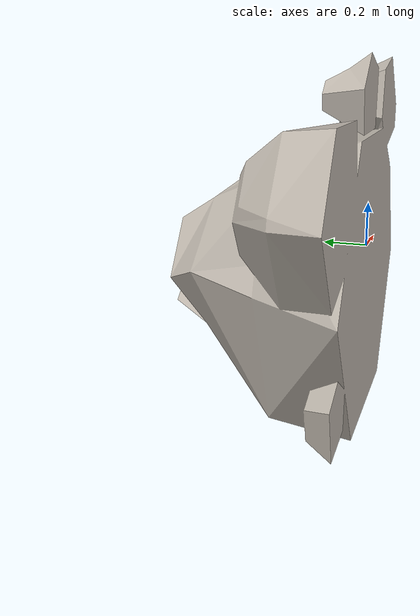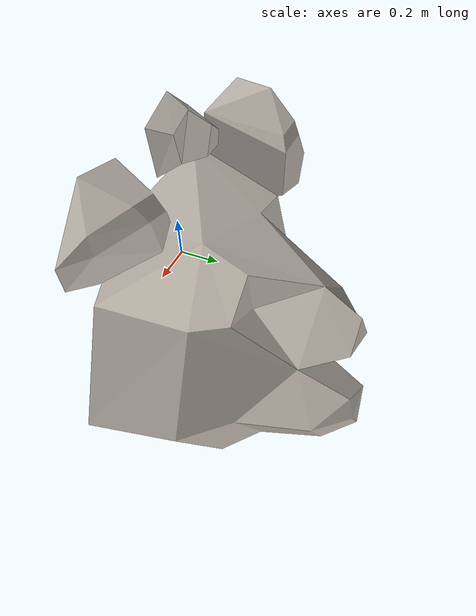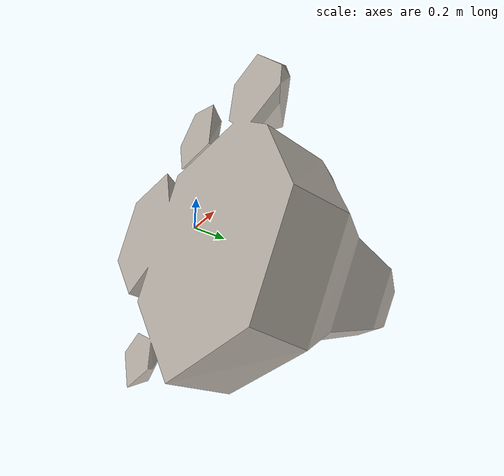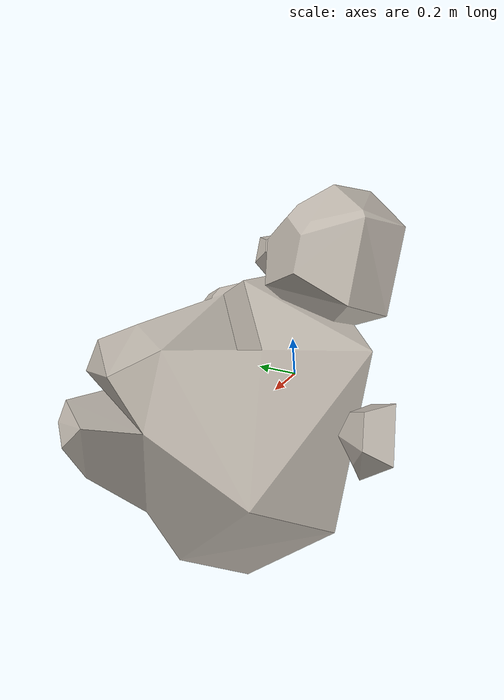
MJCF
<mujoco model="rocks_B">
  <default>
    <default class="visual">
      <geom group="2" type="mesh" contype="0" conaffinity="0" />
    </default>
    <default class="collision">
      <geom group="3" type="mesh" />
    </default>
  </default>
  <asset>
    <texture type="2d" name="rocks_B_spacebits_texture" file="spacebits_texture.png" />
    <material name="rocks_B_spacebits_texture" texture="rocks_B_spacebits_texture" specular="0.50196078" shininess="0.15999998099999999" />
    <mesh file="rocks_B.obj" name="rocks_B_rocks_B" />
  </asset>
  <worldbody>
    <body name="rocks_B">
      <geom material="rocks_B_spacebits_texture" mesh="rocks_B_rocks_B" class="visual" />
      <geom mesh="rocks_B_rocks_B" class="collision" />
    </body>
  </worldbody>
</mujoco>
